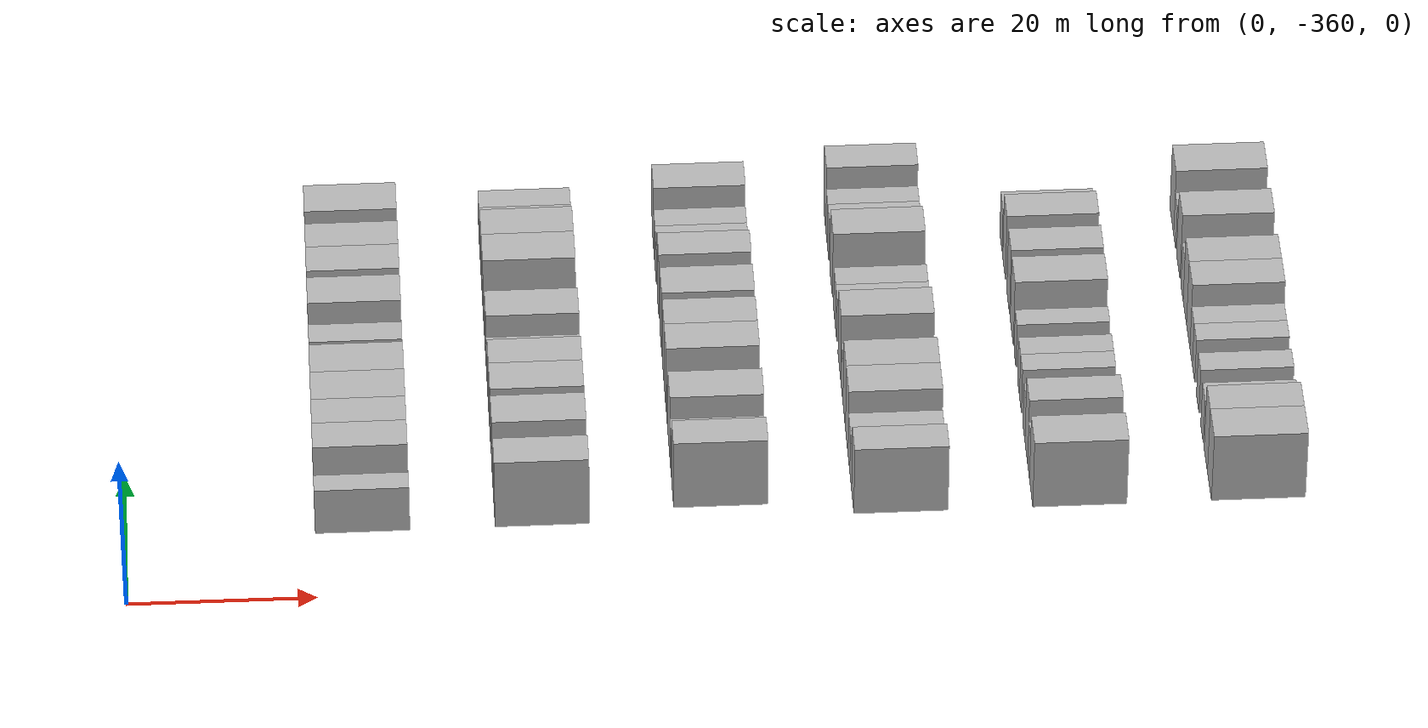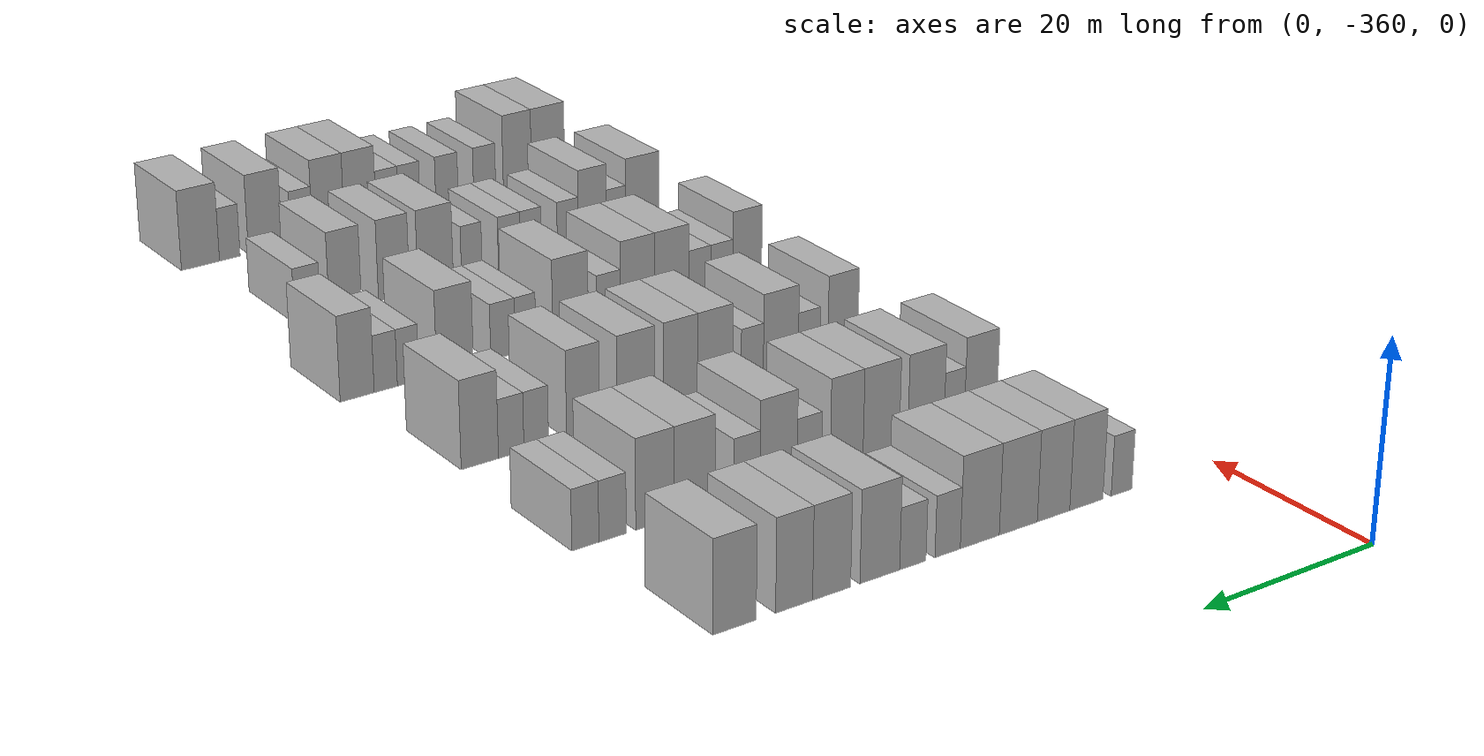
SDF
<sdf version="1.6">
 <world name="default">
  <model name="building_1">
   <static>1</static>
   <pose>25.0000 -348.7556 0 0.000000 0.000000 0.000000</pose>
   <link name="link">
    <pose>0 0 3.00 0 0 0</pose>
    <collision name="collision"><geometry><box><size>10.0000 2.4888 6.0000</size></box></geometry></collision>
    <visual name="visual">
     <cast_shadows>0</cast_shadows>
     <geometry><box><size>10.0000 2.4888 6.0000</size></box></geometry>
     <material>
      <script>
       <uri>model://HANNAS_wall/materials/scripts</uri>
       <uri>model://HANNAS_wall/materials/textures</uri>
       <name>vrc/HANNAS_wall</name>
      </script>
     </material>
    </visual>
   </link>
  </model>
  <model name="building_2">
   <static>1</static>
   <pose>25.0000 -344.5438 0 0.000000 0.000000 0.000000</pose>
   <link name="link">
    <pose>0 0 4.50 0 0 0</pose>
    <collision name="collision"><geometry><box><size>10.0000 3.9348 9.0000</size></box></geometry></collision>
    <visual name="visual">
     <cast_shadows>0</cast_shadows>
     <geometry><box><size>10.0000 3.9348 9.0000</size></box></geometry>
     <material>
      <script>
       <uri>model://HANNAS_wall/materials/scripts</uri>
       <uri>model://HANNAS_wall/materials/textures</uri>
       <name>vrc/HANNAS_wall</name>
      </script>
     </material>
    </visual>
   </link>
  </model>
  <model name="building_3">
   <static>1</static>
   <pose>25.0000 -340.6783 0 0.000000 0.000000 0.000000</pose>
   <link name="link">
    <pose>0 0 4.50 0 0 0</pose>
    <collision name="collision"><geometry><box><size>10.0000 3.7962 9.0000</size></box></geometry></collision>
    <visual name="visual">
     <cast_shadows>0</cast_shadows>
     <geometry><box><size>10.0000 3.7962 9.0000</size></box></geometry>
     <material>
      <script>
       <uri>model://HANNAS_wall/materials/scripts</uri>
       <uri>model://HANNAS_wall/materials/textures</uri>
       <name>vrc/HANNAS_wall</name>
      </script>
     </material>
    </visual>
   </link>
  </model>
  <model name="building_4">
   <static>1</static>
   <pose>25.0000 -336.5885 0 0.000000 0.000000 0.000000</pose>
   <link name="link">
    <pose>0 0 4.50 0 0 0</pose>
    <collision name="collision"><geometry><box><size>10.0000 4.3835 9.0000</size></box></geometry></collision>
    <visual name="visual">
     <cast_shadows>0</cast_shadows>
     <geometry><box><size>10.0000 4.3835 9.0000</size></box></geometry>
     <material>
      <script>
       <uri>model://HANNAS_wall/materials/scripts</uri>
       <uri>model://HANNAS_wall/materials/textures</uri>
       <name>vrc/HANNAS_wall</name>
      </script>
     </material>
    </visual>
   </link>
  </model>
  <model name="building_5">
   <static>1</static>
   <pose>25.0000 -332.1882 0 0.000000 0.000000 0.000000</pose>
   <link name="link">
    <pose>0 0 4.50 0 0 0</pose>
    <collision name="collision"><geometry><box><size>10.0000 4.4172 9.0000</size></box></geometry></collision>
    <visual name="visual">
     <cast_shadows>0</cast_shadows>
     <geometry><box><size>10.0000 4.4172 9.0000</size></box></geometry>
     <material>
      <script>
       <uri>model://HANNAS_wall/materials/scripts</uri>
       <uri>model://HANNAS_wall/materials/textures</uri>
       <name>vrc/HANNAS_wall</name>
      </script>
     </material>
    </visual>
   </link>
  </model>
  <model name="building_6">
   <static>1</static>
   <pose>25.0000 -328.5649 0 0.000000 0.000000 0.000000</pose>
   <link name="link">
    <pose>0 0 3.00 0 0 0</pose>
    <collision name="collision"><geometry><box><size>10.0000 2.8294 6.0000</size></box></geometry></collision>
    <visual name="visual">
     <cast_shadows>0</cast_shadows>
     <geometry><box><size>10.0000 2.8294 6.0000</size></box></geometry>
     <material>
      <script>
       <uri>model://HANNAS_wall/materials/scripts</uri>
       <uri>model://HANNAS_wall/materials/textures</uri>
       <name>vrc/HANNAS_wall</name>
      </script>
     </material>
    </visual>
   </link>
  </model>
  <model name="building_7">
   <static>1</static>
   <pose>25.0000 -324.7012 0 0.000000 0.000000 0.000000</pose>
   <link name="link">
    <pose>0 0 3.00 0 0 0</pose>
    <collision name="collision"><geometry><box><size>10.0000 2.8978 6.0000</size></box></geometry></collision>
    <visual name="visual">
     <cast_shadows>0</cast_shadows>
     <geometry><box><size>10.0000 2.8978 6.0000</size></box></geometry>
     <material>
      <script>
       <uri>model://HANNAS_wall/materials/scripts</uri>
       <uri>model://HANNAS_wall/materials/textures</uri>
       <name>vrc/HANNAS_wall</name>
      </script>
     </material>
    </visual>
   </link>
  </model>
  <model name="building_8">
   <static>1</static>
   <pose>25.0000 -321.0993 0 0.000000 0.000000 0.000000</pose>
   <link name="link">
    <pose>0 0 4.50 0 0 0</pose>
    <collision name="collision"><geometry><box><size>10.0000 4.3060 9.0000</size></box></geometry></collision>
    <visual name="visual">
     <cast_shadows>0</cast_shadows>
     <geometry><box><size>10.0000 4.3060 9.0000</size></box></geometry>
     <material>
      <script>
       <uri>model://HANNAS_wall/materials/scripts</uri>
       <uri>model://HANNAS_wall/materials/textures</uri>
       <name>vrc/HANNAS_wall</name>
      </script>
     </material>
    </visual>
   </link>
  </model>
  <model name="building_9">
   <static>1</static>
   <pose>25.0000 -315.9244 0 0.000000 0.000000 0.000000</pose>
   <link name="link">
    <pose>0 0 4.50 0 0 0</pose>
    <collision name="collision"><geometry><box><size>10.0000 4.0438 9.0000</size></box></geometry></collision>
    <visual name="visual">
     <cast_shadows>0</cast_shadows>
     <geometry><box><size>10.0000 4.0438 9.0000</size></box></geometry>
     <material>
      <script>
       <uri>model://HANNAS_wall/materials/scripts</uri>
       <uri>model://HANNAS_wall/materials/textures</uri>
       <name>vrc/HANNAS_wall</name>
      </script>
     </material>
    </visual>
   </link>
  </model>
  <model name="building_10">
   <static>1</static>
   <pose>25.0000 -311.9721 0 0.000000 0.000000 0.000000</pose>
   <link name="link">
    <pose>0 0 4.50 0 0 0</pose>
    <collision name="collision"><geometry><box><size>10.0000 3.8609 9.0000</size></box></geometry></collision>
    <visual name="visual">
     <cast_shadows>0</cast_shadows>
     <geometry><box><size>10.0000 3.8609 9.0000</size></box></geometry>
     <material>
      <script>
       <uri>model://HANNAS_wall/materials/scripts</uri>
       <uri>model://HANNAS_wall/materials/textures</uri>
       <name>vrc/HANNAS_wall</name>
      </script>
     </material>
    </visual>
   </link>
  </model>
  <model name="building_11">
   <static>1</static>
   <pose>25.0000 -305.8310 0 0.000000 0.000000 0.000000</pose>
   <link name="link">
    <pose>0 0 4.50 0 0 0</pose>
    <collision name="collision"><geometry><box><size>10.0000 4.4213 9.0000</size></box></geometry></collision>
    <visual name="visual">
     <cast_shadows>0</cast_shadows>
     <geometry><box><size>10.0000 4.4213 9.0000</size></box></geometry>
     <material>
      <script>
       <uri>model://HANNAS_wall/materials/scripts</uri>
       <uri>model://HANNAS_wall/materials/textures</uri>
       <name>vrc/HANNAS_wall</name>
      </script>
     </material>
    </visual>
   </link>
  </model>
  <model name="building_171">
   <static>1</static>
   <pose>44.0000 -348.0182 0 0.000000 0.000000 0.000000</pose>
   <link name="link">
    <pose>0 0 4.50 0 0 0</pose>
    <collision name="collision"><geometry><box><size>10.0000 3.9637 9.0000</size></box></geometry></collision>
    <visual name="visual">
     <cast_shadows>0</cast_shadows>
     <geometry><box><size>10.0000 3.9637 9.0000</size></box></geometry>
     <material>
      <script>
       <uri>model://HANNAS_wall/materials/scripts</uri>
       <uri>model://HANNAS_wall/materials/textures</uri>
       <name>vrc/HANNAS_wall</name>
      </script>
     </material>
    </visual>
   </link>
  </model>
  <model name="building_172">
   <static>1</static>
   <pose>44.0000 -344.8014 0 0.000000 0.000000 0.000000</pose>
   <link name="link">
    <pose>0 0 3.00 0 0 0</pose>
    <collision name="collision"><geometry><box><size>10.0000 2.4699 6.0000</size></box></geometry></collision>
    <visual name="visual">
     <cast_shadows>0</cast_shadows>
     <geometry><box><size>10.0000 2.4699 6.0000</size></box></geometry>
     <material>
      <script>
       <uri>model://HANNAS_wall/materials/scripts</uri>
       <uri>model://HANNAS_wall/materials/textures</uri>
       <name>vrc/HANNAS_wall</name>
      </script>
     </material>
    </visual>
   </link>
  </model>
  <model name="building_173">
   <static>1</static>
   <pose>44.0000 -341.3970 0 0.000000 0.000000 0.000000</pose>
   <link name="link">
    <pose>0 0 4.50 0 0 0</pose>
    <collision name="collision"><geometry><box><size>10.0000 4.3388 9.0000</size></box></geometry></collision>
    <visual name="visual">
     <cast_shadows>0</cast_shadows>
     <geometry><box><size>10.0000 4.3388 9.0000</size></box></geometry>
     <material>
      <script>
       <uri>model://HANNAS_wall/materials/scripts</uri>
       <uri>model://HANNAS_wall/materials/textures</uri>
       <name>vrc/HANNAS_wall</name>
      </script>
     </material>
    </visual>
   </link>
  </model>
  <model name="building_174">
   <static>1</static>
   <pose>44.0000 -336.1019 0 0.000000 0.000000 0.000000</pose>
   <link name="link">
    <pose>0 0 4.50 0 0 0</pose>
    <collision name="collision"><geometry><box><size>10.0000 4.2515 9.0000</size></box></geometry></collision>
    <visual name="visual">
     <cast_shadows>0</cast_shadows>
     <geometry><box><size>10.0000 4.2515 9.0000</size></box></geometry>
     <material>
      <script>
       <uri>model://HANNAS_wall/materials/scripts</uri>
       <uri>model://HANNAS_wall/materials/textures</uri>
       <name>vrc/HANNAS_wall</name>
      </script>
     </material>
    </visual>
   </link>
  </model>
  <model name="building_175">
   <static>1</static>
   <pose>44.0000 -332.0689 0 0.000000 0.000000 0.000000</pose>
   <link name="link">
    <pose>0 0 4.50 0 0 0</pose>
    <collision name="collision"><geometry><box><size>10.0000 3.8146 9.0000</size></box></geometry></collision>
    <visual name="visual">
     <cast_shadows>0</cast_shadows>
     <geometry><box><size>10.0000 3.8146 9.0000</size></box></geometry>
     <material>
      <script>
       <uri>model://HANNAS_wall/materials/scripts</uri>
       <uri>model://HANNAS_wall/materials/textures</uri>
       <name>vrc/HANNAS_wall</name>
      </script>
     </material>
    </visual>
   </link>
  </model>
  <model name="building_176">
   <static>1</static>
   <pose>44.0000 -327.7706 0 0.000000 0.000000 0.000000</pose>
   <link name="link">
    <pose>0 0 3.00 0 0 0</pose>
    <collision name="collision"><geometry><box><size>10.0000 2.7820 6.0000</size></box></geometry></collision>
    <visual name="visual">
     <cast_shadows>0</cast_shadows>
     <geometry><box><size>10.0000 2.7820 6.0000</size></box></geometry>
     <material>
      <script>
       <uri>model://HANNAS_wall/materials/scripts</uri>
       <uri>model://HANNAS_wall/materials/textures</uri>
       <name>vrc/HANNAS_wall</name>
      </script>
     </material>
    </visual>
   </link>
  </model>
  <model name="building_177">
   <static>1</static>
   <pose>44.0000 -324.2966 0 0.000000 0.000000 0.000000</pose>
   <link name="link">
    <pose>0 0 4.50 0 0 0</pose>
    <collision name="collision"><geometry><box><size>10.0000 4.1660 9.0000</size></box></geometry></collision>
    <visual name="visual">
     <cast_shadows>0</cast_shadows>
     <geometry><box><size>10.0000 4.1660 9.0000</size></box></geometry>
     <material>
      <script>
       <uri>model://HANNAS_wall/materials/scripts</uri>
       <uri>model://HANNAS_wall/materials/textures</uri>
       <name>vrc/HANNAS_wall</name>
      </script>
     </material>
    </visual>
   </link>
  </model>
  <model name="building_178">
   <static>1</static>
   <pose>44.0000 -320.7392 0 0.000000 0.000000 0.000000</pose>
   <link name="link">
    <pose>0 0 3.00 0 0 0</pose>
    <collision name="collision"><geometry><box><size>10.0000 2.9488 6.0000</size></box></geometry></collision>
    <visual name="visual">
     <cast_shadows>0</cast_shadows>
     <geometry><box><size>10.0000 2.9488 6.0000</size></box></geometry>
     <material>
      <script>
       <uri>model://HANNAS_wall/materials/scripts</uri>
       <uri>model://HANNAS_wall/materials/textures</uri>
       <name>vrc/HANNAS_wall</name>
      </script>
     </material>
    </visual>
   </link>
  </model>
  <model name="building_179">
   <static>1</static>
   <pose>44.0000 -315.0459 0 0.000000 0.000000 0.000000</pose>
   <link name="link">
    <pose>0 0 4.50 0 0 0</pose>
    <collision name="collision"><geometry><box><size>10.0000 4.4378 9.0000</size></box></geometry></collision>
    <visual name="visual">
     <cast_shadows>0</cast_shadows>
     <geometry><box><size>10.0000 4.4378 9.0000</size></box></geometry>
     <material>
      <script>
       <uri>model://HANNAS_wall/materials/scripts</uri>
       <uri>model://HANNAS_wall/materials/textures</uri>
       <name>vrc/HANNAS_wall</name>
      </script>
     </material>
    </visual>
   </link>
  </model>
  <model name="building_180">
   <static>1</static>
   <pose>44.0000 -310.7592 0 0.000000 0.000000 0.000000</pose>
   <link name="link">
    <pose>0 0 4.50 0 0 0</pose>
    <collision name="collision"><geometry><box><size>10.0000 4.1355 9.0000</size></box></geometry></collision>
    <visual name="visual">
     <cast_shadows>0</cast_shadows>
     <geometry><box><size>10.0000 4.1355 9.0000</size></box></geometry>
     <material>
      <script>
       <uri>model://HANNAS_wall/materials/scripts</uri>
       <uri>model://HANNAS_wall/materials/textures</uri>
       <name>vrc/HANNAS_wall</name>
      </script>
     </material>
    </visual>
   </link>
  </model>
  <model name="building_181">
   <static>1</static>
   <pose>44.0000 -306.2509 0 0.000000 0.000000 0.000000</pose>
   <link name="link">
    <pose>0 0 3.00 0 0 0</pose>
    <collision name="collision"><geometry><box><size>10.0000 2.8810 6.0000</size></box></geometry></collision>
    <visual name="visual">
     <cast_shadows>0</cast_shadows>
     <geometry><box><size>10.0000 2.8810 6.0000</size></box></geometry>
     <material>
      <script>
       <uri>model://HANNAS_wall/materials/scripts</uri>
       <uri>model://HANNAS_wall/materials/textures</uri>
       <name>vrc/HANNAS_wall</name>
      </script>
     </material>
    </visual>
   </link>
  </model>
  <model name="building_182">
   <static>1</static>
   <pose>44.0000 -303.3991 0 0.000000 0.000000 0.000000</pose>
   <link name="link">
    <pose>0 0 3.00 0 0 0</pose>
    <collision name="collision"><geometry><box><size>10.0000 2.8228 6.0000</size></box></geometry></collision>
    <visual name="visual">
     <cast_shadows>0</cast_shadows>
     <geometry><box><size>10.0000 2.8228 6.0000</size></box></geometry>
     <material>
      <script>
       <uri>model://HANNAS_wall/materials/scripts</uri>
       <uri>model://HANNAS_wall/materials/textures</uri>
       <name>vrc/HANNAS_wall</name>
      </script>
     </material>
    </visual>
   </link>
  </model>
  <model name="building_343">
   <static>1</static>
   <pose>63.0000 -346.1325 0 0.000000 0.000000 0.000000</pose>
   <link name="link">
    <pose>0 0 4.50 0 0 0</pose>
    <collision name="collision"><geometry><box><size>10.0000 3.7350 9.0000</size></box></geometry></collision>
    <visual name="visual">
     <cast_shadows>0</cast_shadows>
     <geometry><box><size>10.0000 3.7350 9.0000</size></box></geometry>
     <material>
      <script>
       <uri>model://HANNAS_wall/materials/scripts</uri>
       <uri>model://HANNAS_wall/materials/textures</uri>
       <name>vrc/HANNAS_wall</name>
      </script>
     </material>
    </visual>
   </link>
  </model>
  <model name="building_344">
   <static>1</static>
   <pose>63.0000 -341.9500 0 0.000000 0.000000 0.000000</pose>
   <link name="link">
    <pose>0 0 3.00 0 0 0</pose>
    <collision name="collision"><geometry><box><size>10.0000 2.6300 6.0000</size></box></geometry></collision>
    <visual name="visual">
     <cast_shadows>0</cast_shadows>
     <geometry><box><size>10.0000 2.6300 6.0000</size></box></geometry>
     <material>
      <script>
       <uri>model://HANNAS_wall/materials/scripts</uri>
       <uri>model://HANNAS_wall/materials/textures</uri>
       <name>vrc/HANNAS_wall</name>
      </script>
     </material>
    </visual>
   </link>
  </model>
  <model name="building_345">
   <static>1</static>
   <pose>63.0000 -338.5209 0 0.000000 0.000000 0.000000</pose>
   <link name="link">
    <pose>0 0 4.50 0 0 0</pose>
    <collision name="collision"><geometry><box><size>10.0000 4.2281 9.0000</size></box></geometry></collision>
    <visual name="visual">
     <cast_shadows>0</cast_shadows>
     <geometry><box><size>10.0000 4.2281 9.0000</size></box></geometry>
     <material>
      <script>
       <uri>model://HANNAS_wall/materials/scripts</uri>
       <uri>model://HANNAS_wall/materials/textures</uri>
       <name>vrc/HANNAS_wall</name>
      </script>
     </material>
    </visual>
   </link>
  </model>
  <model name="building_346">
   <static>1</static>
   <pose>63.0000 -335.0819 0 0.000000 0.000000 0.000000</pose>
   <link name="link">
    <pose>0 0 3.00 0 0 0</pose>
    <collision name="collision"><geometry><box><size>10.0000 2.6500 6.0000</size></box></geometry></collision>
    <visual name="visual">
     <cast_shadows>0</cast_shadows>
     <geometry><box><size>10.0000 2.6500 6.0000</size></box></geometry>
     <material>
      <script>
       <uri>model://HANNAS_wall/materials/scripts</uri>
       <uri>model://HANNAS_wall/materials/textures</uri>
       <name>vrc/HANNAS_wall</name>
      </script>
     </material>
    </visual>
   </link>
  </model>
  <model name="building_347">
   <static>1</static>
   <pose>63.0000 -330.7114 0 0.000000 0.000000 0.000000</pose>
   <link name="link">
    <pose>0 0 4.50 0 0 0</pose>
    <collision name="collision"><geometry><box><size>10.0000 4.0910 9.0000</size></box></geometry></collision>
    <visual name="visual">
     <cast_shadows>0</cast_shadows>
     <geometry><box><size>10.0000 4.0910 9.0000</size></box></geometry>
     <material>
      <script>
       <uri>model://HANNAS_wall/materials/scripts</uri>
       <uri>model://HANNAS_wall/materials/textures</uri>
       <name>vrc/HANNAS_wall</name>
      </script>
     </material>
    </visual>
   </link>
  </model>
  <model name="building_348">
   <static>1</static>
   <pose>63.0000 -326.6590 0 0.000000 0.000000 0.000000</pose>
   <link name="link">
    <pose>0 0 4.50 0 0 0</pose>
    <collision name="collision"><geometry><box><size>10.0000 4.0137 9.0000</size></box></geometry></collision>
    <visual name="visual">
     <cast_shadows>0</cast_shadows>
     <geometry><box><size>10.0000 4.0137 9.0000</size></box></geometry>
     <material>
      <script>
       <uri>model://HANNAS_wall/materials/scripts</uri>
       <uri>model://HANNAS_wall/materials/textures</uri>
       <name>vrc/HANNAS_wall</name>
      </script>
     </material>
    </visual>
   </link>
  </model>
  <model name="building_349">
   <static>1</static>
   <pose>63.0000 -321.5027 0 0.000000 0.000000 0.000000</pose>
   <link name="link">
    <pose>0 0 4.50 0 0 0</pose>
    <collision name="collision"><geometry><box><size>10.0000 4.2990 9.0000</size></box></geometry></collision>
    <visual name="visual">
     <cast_shadows>0</cast_shadows>
     <geometry><box><size>10.0000 4.2990 9.0000</size></box></geometry>
     <material>
      <script>
       <uri>model://HANNAS_wall/materials/scripts</uri>
       <uri>model://HANNAS_wall/materials/textures</uri>
       <name>vrc/HANNAS_wall</name>
      </script>
     </material>
    </visual>
   </link>
  </model>
  <model name="building_350">
   <static>1</static>
   <pose>63.0000 -315.5045 0 0.000000 0.000000 0.000000</pose>
   <link name="link">
    <pose>0 0 4.50 0 0 0</pose>
    <collision name="collision"><geometry><box><size>10.0000 3.6975 9.0000</size></box></geometry></collision>
    <visual name="visual">
     <cast_shadows>0</cast_shadows>
     <geometry><box><size>10.0000 3.6975 9.0000</size></box></geometry>
     <material>
      <script>
       <uri>model://HANNAS_wall/materials/scripts</uri>
       <uri>model://HANNAS_wall/materials/textures</uri>
       <name>vrc/HANNAS_wall</name>
      </script>
     </material>
    </visual>
   </link>
  </model>
  <model name="building_351">
   <static>1</static>
   <pose>63.0000 -310.3029 0 0.000000 0.000000 0.000000</pose>
   <link name="link">
    <pose>0 0 3.00 0 0 0</pose>
    <collision name="collision"><geometry><box><size>10.0000 2.7055 6.0000</size></box></geometry></collision>
    <visual name="visual">
     <cast_shadows>0</cast_shadows>
     <geometry><box><size>10.0000 2.7055 6.0000</size></box></geometry>
     <material>
      <script>
       <uri>model://HANNAS_wall/materials/scripts</uri>
       <uri>model://HANNAS_wall/materials/textures</uri>
       <name>vrc/HANNAS_wall</name>
      </script>
     </material>
    </visual>
   </link>
  </model>
  <model name="building_352">
   <static>1</static>
   <pose>63.0000 -307.5657 0 0.000000 0.000000 0.000000</pose>
   <link name="link">
    <pose>0 0 3.00 0 0 0</pose>
    <collision name="collision"><geometry><box><size>10.0000 2.7688 6.0000</size></box></geometry></collision>
    <visual name="visual">
     <cast_shadows>0</cast_shadows>
     <geometry><box><size>10.0000 2.7688 6.0000</size></box></geometry>
     <material>
      <script>
       <uri>model://HANNAS_wall/materials/scripts</uri>
       <uri>model://HANNAS_wall/materials/textures</uri>
       <name>vrc/HANNAS_wall</name>
      </script>
     </material>
    </visual>
   </link>
  </model>
  <model name="building_353">
   <static>1</static>
   <pose>63.0000 -304.1763 0 0.000000 0.000000 0.000000</pose>
   <link name="link">
    <pose>0 0 4.50 0 0 0</pose>
    <collision name="collision"><geometry><box><size>10.0000 4.0099 9.0000</size></box></geometry></collision>
    <visual name="visual">
     <cast_shadows>0</cast_shadows>
     <geometry><box><size>10.0000 4.0099 9.0000</size></box></geometry>
     <material>
      <script>
       <uri>model://HANNAS_wall/materials/scripts</uri>
       <uri>model://HANNAS_wall/materials/textures</uri>
       <name>vrc/HANNAS_wall</name>
      </script>
     </material>
    </visual>
   </link>
  </model>
  <model name="building_522">
   <static>1</static>
   <pose>82.0000 -348.1742 0 0.000000 0.000000 0.000000</pose>
   <link name="link">
    <pose>0 0 4.50 0 0 0</pose>
    <collision name="collision"><geometry><box><size>10.0000 3.6516 9.0000</size></box></geometry></collision>
    <visual name="visual">
     <cast_shadows>0</cast_shadows>
     <geometry><box><size>10.0000 3.6516 9.0000</size></box></geometry>
     <material>
      <script>
       <uri>model://HANNAS_wall/materials/scripts</uri>
       <uri>model://HANNAS_wall/materials/textures</uri>
       <name>vrc/HANNAS_wall</name>
      </script>
     </material>
    </visual>
   </link>
  </model>
  <model name="building_523">
   <static>1</static>
   <pose>82.0000 -344.9289 0 0.000000 0.000000 0.000000</pose>
   <link name="link">
    <pose>0 0 3.00 0 0 0</pose>
    <collision name="collision"><geometry><box><size>10.0000 2.8389 6.0000</size></box></geometry></collision>
    <visual name="visual">
     <cast_shadows>0</cast_shadows>
     <geometry><box><size>10.0000 2.8389 6.0000</size></box></geometry>
     <material>
      <script>
       <uri>model://HANNAS_wall/materials/scripts</uri>
       <uri>model://HANNAS_wall/materials/textures</uri>
       <name>vrc/HANNAS_wall</name>
      </script>
     </material>
    </visual>
   </link>
  </model>
  <model name="building_524">
   <static>1</static>
   <pose>82.0000 -342.1339 0 0.000000 0.000000 0.000000</pose>
   <link name="link">
    <pose>0 0 3.00 0 0 0</pose>
    <collision name="collision"><geometry><box><size>10.0000 2.7511 6.0000</size></box></geometry></collision>
    <visual name="visual">
     <cast_shadows>0</cast_shadows>
     <geometry><box><size>10.0000 2.7511 6.0000</size></box></geometry>
     <material>
      <script>
       <uri>model://HANNAS_wall/materials/scripts</uri>
       <uri>model://HANNAS_wall/materials/textures</uri>
       <name>vrc/HANNAS_wall</name>
      </script>
     </material>
    </visual>
   </link>
  </model>
  <model name="building_525">
   <static>1</static>
   <pose>82.0000 -338.6343 0 0.000000 0.000000 0.000000</pose>
   <link name="link">
    <pose>0 0 4.50 0 0 0</pose>
    <collision name="collision"><geometry><box><size>10.0000 4.2481 9.0000</size></box></geometry></collision>
    <visual name="visual">
     <cast_shadows>0</cast_shadows>
     <geometry><box><size>10.0000 4.2481 9.0000</size></box></geometry>
     <material>
      <script>
       <uri>model://HANNAS_wall/materials/scripts</uri>
       <uri>model://HANNAS_wall/materials/textures</uri>
       <name>vrc/HANNAS_wall</name>
      </script>
     </material>
    </visual>
   </link>
  </model>
  <model name="building_526">
   <static>1</static>
   <pose>82.0000 -334.4495 0 0.000000 0.000000 0.000000</pose>
   <link name="link">
    <pose>0 0 4.50 0 0 0</pose>
    <collision name="collision"><geometry><box><size>10.0000 4.1214 9.0000</size></box></geometry></collision>
    <visual name="visual">
     <cast_shadows>0</cast_shadows>
     <geometry><box><size>10.0000 4.1214 9.0000</size></box></geometry>
     <material>
      <script>
       <uri>model://HANNAS_wall/materials/scripts</uri>
       <uri>model://HANNAS_wall/materials/textures</uri>
       <name>vrc/HANNAS_wall</name>
      </script>
     </material>
    </visual>
   </link>
  </model>
  <model name="building_527">
   <static>1</static>
   <pose>82.0000 -330.9265 0 0.000000 0.000000 0.000000</pose>
   <link name="link">
    <pose>0 0 3.00 0 0 0</pose>
    <collision name="collision"><geometry><box><size>10.0000 2.9245 6.0000</size></box></geometry></collision>
    <visual name="visual">
     <cast_shadows>0</cast_shadows>
     <geometry><box><size>10.0000 2.9245 6.0000</size></box></geometry>
     <material>
      <script>
       <uri>model://HANNAS_wall/materials/scripts</uri>
       <uri>model://HANNAS_wall/materials/textures</uri>
       <name>vrc/HANNAS_wall</name>
      </script>
     </material>
    </visual>
   </link>
  </model>
  <model name="building_528">
   <static>1</static>
   <pose>82.0000 -326.3429 0 0.000000 0.000000 0.000000</pose>
   <link name="link">
    <pose>0 0 4.50 0 0 0</pose>
    <collision name="collision"><geometry><box><size>10.0000 4.2428 9.0000</size></box></geometry></collision>
    <visual name="visual">
     <cast_shadows>0</cast_shadows>
     <geometry><box><size>10.0000 4.2428 9.0000</size></box></geometry>
     <material>
      <script>
       <uri>model://HANNAS_wall/materials/scripts</uri>
       <uri>model://HANNAS_wall/materials/textures</uri>
       <name>vrc/HANNAS_wall</name>
      </script>
     </material>
    </visual>
   </link>
  </model>
  <model name="building_529">
   <static>1</static>
   <pose>82.0000 -321.0095 0 0.000000 0.000000 0.000000</pose>
   <link name="link">
    <pose>0 0 3.00 0 0 0</pose>
    <collision name="collision"><geometry><box><size>10.0000 2.4239 6.0000</size></box></geometry></collision>
    <visual name="visual">
     <cast_shadows>0</cast_shadows>
     <geometry><box><size>10.0000 2.4239 6.0000</size></box></geometry>
     <material>
      <script>
       <uri>model://HANNAS_wall/materials/scripts</uri>
       <uri>model://HANNAS_wall/materials/textures</uri>
       <name>vrc/HANNAS_wall</name>
      </script>
     </material>
    </visual>
   </link>
  </model>
  <model name="building_530">
   <static>1</static>
   <pose>82.0000 -318.3748 0 0.000000 0.000000 0.000000</pose>
   <link name="link">
    <pose>0 0 3.00 0 0 0</pose>
    <collision name="collision"><geometry><box><size>10.0000 2.8454 6.0000</size></box></geometry></collision>
    <visual name="visual">
     <cast_shadows>0</cast_shadows>
     <geometry><box><size>10.0000 2.8454 6.0000</size></box></geometry>
     <material>
      <script>
       <uri>model://HANNAS_wall/materials/scripts</uri>
       <uri>model://HANNAS_wall/materials/textures</uri>
       <name>vrc/HANNAS_wall</name>
      </script>
     </material>
    </visual>
   </link>
  </model>
  <model name="building_531">
   <static>1</static>
   <pose>82.0000 -312.8634 0 0.000000 0.000000 0.000000</pose>
   <link name="link">
    <pose>0 0 4.50 0 0 0</pose>
    <collision name="collision"><geometry><box><size>10.0000 4.1774 9.0000</size></box></geometry></collision>
    <visual name="visual">
     <cast_shadows>0</cast_shadows>
     <geometry><box><size>10.0000 4.1774 9.0000</size></box></geometry>
     <material>
      <script>
       <uri>model://HANNAS_wall/materials/scripts</uri>
       <uri>model://HANNAS_wall/materials/textures</uri>
       <name>vrc/HANNAS_wall</name>
      </script>
     </material>
    </visual>
   </link>
  </model>
  <model name="building_532">
   <static>1</static>
   <pose>82.0000 -307.5645 0 0.000000 0.000000 0.000000</pose>
   <link name="link">
    <pose>0 0 3.00 0 0 0</pose>
    <collision name="collision"><geometry><box><size>10.0000 2.4205 6.0000</size></box></geometry></collision>
    <visual name="visual">
     <cast_shadows>0</cast_shadows>
     <geometry><box><size>10.0000 2.4205 6.0000</size></box></geometry>
     <material>
      <script>
       <uri>model://HANNAS_wall/materials/scripts</uri>
       <uri>model://HANNAS_wall/materials/textures</uri>
       <name>vrc/HANNAS_wall</name>
      </script>
     </material>
    </visual>
   </link>
  </model>
  <model name="building_533">
   <static>1</static>
   <pose>82.0000 -305.0686 0 0.000000 0.000000 0.000000</pose>
   <link name="link">
    <pose>0 0 3.00 0 0 0</pose>
    <collision name="collision"><geometry><box><size>10.0000 2.5714 6.0000</size></box></geometry></collision>
    <visual name="visual">
     <cast_shadows>0</cast_shadows>
     <geometry><box><size>10.0000 2.5714 6.0000</size></box></geometry>
     <material>
      <script>
       <uri>model://HANNAS_wall/materials/scripts</uri>
       <uri>model://HANNAS_wall/materials/textures</uri>
       <name>vrc/HANNAS_wall</name>
      </script>
     </material>
    </visual>
   </link>
  </model>
  <model name="building_534">
   <static>1</static>
   <pose>82.0000 -301.9152 0 0.000000 0.000000 0.000000</pose>
   <link name="link">
    <pose>0 0 4.50 0 0 0</pose>
    <collision name="collision"><geometry><box><size>10.0000 3.7354 9.0000</size></box></geometry></collision>
    <visual name="visual">
     <cast_shadows>0</cast_shadows>
     <geometry><box><size>10.0000 3.7354 9.0000</size></box></geometry>
     <material>
      <script>
       <uri>model://HANNAS_wall/materials/scripts</uri>
       <uri>model://HANNAS_wall/materials/textures</uri>
       <name>vrc/HANNAS_wall</name>
      </script>
     </material>
    </visual>
   </link>
  </model>
  <model name="building_696">
   <static>1</static>
   <pose>101.0000 -347.8178 0 0.000000 0.000000 0.000000</pose>
   <link name="link">
    <pose>0 0 4.50 0 0 0</pose>
    <collision name="collision"><geometry><box><size>10.0000 4.3643 9.0000</size></box></geometry></collision>
    <visual name="visual">
     <cast_shadows>0</cast_shadows>
     <geometry><box><size>10.0000 4.3643 9.0000</size></box></geometry>
     <material>
      <script>
       <uri>model://HANNAS_wall/materials/scripts</uri>
       <uri>model://HANNAS_wall/materials/textures</uri>
       <name>vrc/HANNAS_wall</name>
      </script>
     </material>
    </visual>
   </link>
  </model>
  <model name="building_697">
   <static>1</static>
   <pose>101.0000 -344.4191 0 0.000000 0.000000 0.000000</pose>
   <link name="link">
    <pose>0 0 3.00 0 0 0</pose>
    <collision name="collision"><geometry><box><size>10.0000 2.4333 6.0000</size></box></geometry></collision>
    <visual name="visual">
     <cast_shadows>0</cast_shadows>
     <geometry><box><size>10.0000 2.4333 6.0000</size></box></geometry>
     <material>
      <script>
       <uri>model://HANNAS_wall/materials/scripts</uri>
       <uri>model://HANNAS_wall/materials/textures</uri>
       <name>vrc/HANNAS_wall</name>
      </script>
     </material>
    </visual>
   </link>
  </model>
  <model name="building_698">
   <static>1</static>
   <pose>101.0000 -341.3894 0 0.000000 0.000000 0.000000</pose>
   <link name="link">
    <pose>0 0 4.50 0 0 0</pose>
    <collision name="collision"><geometry><box><size>10.0000 3.6260 9.0000</size></box></geometry></collision>
    <visual name="visual">
     <cast_shadows>0</cast_shadows>
     <geometry><box><size>10.0000 3.6260 9.0000</size></box></geometry>
     <material>
      <script>
       <uri>model://HANNAS_wall/materials/scripts</uri>
       <uri>model://HANNAS_wall/materials/textures</uri>
       <name>vrc/HANNAS_wall</name>
      </script>
     </material>
    </visual>
   </link>
  </model>
  <model name="building_699">
   <static>1</static>
   <pose>101.0000 -338.2328 0 0.000000 0.000000 0.000000</pose>
   <link name="link">
    <pose>0 0 3.00 0 0 0</pose>
    <collision name="collision"><geometry><box><size>10.0000 2.6873 6.0000</size></box></geometry></collision>
    <visual name="visual">
     <cast_shadows>0</cast_shadows>
     <geometry><box><size>10.0000 2.6873 6.0000</size></box></geometry>
     <material>
      <script>
       <uri>model://HANNAS_wall/materials/scripts</uri>
       <uri>model://HANNAS_wall/materials/textures</uri>
       <name>vrc/HANNAS_wall</name>
      </script>
     </material>
    </visual>
   </link>
  </model>
  <model name="building_700">
   <static>1</static>
   <pose>101.0000 -333.5779 0 0.000000 0.000000 0.000000</pose>
   <link name="link">
    <pose>0 0 3.00 0 0 0</pose>
    <collision name="collision"><geometry><box><size>10.0000 2.6225 6.0000</size></box></geometry></collision>
    <visual name="visual">
     <cast_shadows>0</cast_shadows>
     <geometry><box><size>10.0000 2.6225 6.0000</size></box></geometry>
     <material>
      <script>
       <uri>model://HANNAS_wall/materials/scripts</uri>
       <uri>model://HANNAS_wall/materials/textures</uri>
       <name>vrc/HANNAS_wall</name>
      </script>
     </material>
    </visual>
   </link>
  </model>
  <model name="building_701">
   <static>1</static>
   <pose>101.0000 -330.8861 0 0.000000 0.000000 0.000000</pose>
   <link name="link">
    <pose>0 0 3.00 0 0 0</pose>
    <collision name="collision"><geometry><box><size>10.0000 2.7611 6.0000</size></box></geometry></collision>
    <visual name="visual">
     <cast_shadows>0</cast_shadows>
     <geometry><box><size>10.0000 2.7611 6.0000</size></box></geometry>
     <material>
      <script>
       <uri>model://HANNAS_wall/materials/scripts</uri>
       <uri>model://HANNAS_wall/materials/textures</uri>
       <name>vrc/HANNAS_wall</name>
      </script>
     </material>
    </visual>
   </link>
  </model>
  <model name="building_702">
   <static>1</static>
   <pose>101.0000 -326.2415 0 0.000000 0.000000 0.000000</pose>
   <link name="link">
    <pose>0 0 3.00 0 0 0</pose>
    <collision name="collision"><geometry><box><size>10.0000 2.5280 6.0000</size></box></geometry></collision>
    <visual name="visual">
     <cast_shadows>0</cast_shadows>
     <geometry><box><size>10.0000 2.5280 6.0000</size></box></geometry>
     <material>
      <script>
       <uri>model://HANNAS_wall/materials/scripts</uri>
       <uri>model://HANNAS_wall/materials/textures</uri>
       <name>vrc/HANNAS_wall</name>
      </script>
     </material>
    </visual>
   </link>
  </model>
  <model name="building_703">
   <static>1</static>
   <pose>101.0000 -321.8466 0 0.000000 0.000000 0.000000</pose>
   <link name="link">
    <pose>0 0 4.50 0 0 0</pose>
    <collision name="collision"><geometry><box><size>10.0000 4.2619 9.0000</size></box></geometry></collision>
    <visual name="visual">
     <cast_shadows>0</cast_shadows>
     <geometry><box><size>10.0000 4.2619 9.0000</size></box></geometry>
     <material>
      <script>
       <uri>model://HANNAS_wall/materials/scripts</uri>
       <uri>model://HANNAS_wall/materials/textures</uri>
       <name>vrc/HANNAS_wall</name>
      </script>
     </material>
    </visual>
   </link>
  </model>
  <model name="building_704">
   <static>1</static>
   <pose>101.0000 -316.8671 0 0.000000 0.000000 0.000000</pose>
   <link name="link">
    <pose>0 0 4.50 0 0 0</pose>
    <collision name="collision"><geometry><box><size>10.0000 3.6971 9.0000</size></box></geometry></collision>
    <visual name="visual">
     <cast_shadows>0</cast_shadows>
     <geometry><box><size>10.0000 3.6971 9.0000</size></box></geometry>
     <material>
      <script>
       <uri>model://HANNAS_wall/materials/scripts</uri>
       <uri>model://HANNAS_wall/materials/textures</uri>
       <name>vrc/HANNAS_wall</name>
      </script>
     </material>
    </visual>
   </link>
  </model>
  <model name="building_705">
   <static>1</static>
   <pose>101.0000 -311.1480 0 0.000000 0.000000 0.000000</pose>
   <link name="link">
    <pose>0 0 4.50 0 0 0</pose>
    <collision name="collision"><geometry><box><size>10.0000 3.7410 9.0000</size></box></geometry></collision>
    <visual name="visual">
     <cast_shadows>0</cast_shadows>
     <geometry><box><size>10.0000 3.7410 9.0000</size></box></geometry>
     <material>
      <script>
       <uri>model://HANNAS_wall/materials/scripts</uri>
       <uri>model://HANNAS_wall/materials/textures</uri>
       <name>vrc/HANNAS_wall</name>
      </script>
     </material>
    </visual>
   </link>
  </model>
  <model name="building_706">
   <static>1</static>
   <pose>101.0000 -306.7839 0 0.000000 0.000000 0.000000</pose>
   <link name="link">
    <pose>0 0 3.00 0 0 0</pose>
    <collision name="collision"><geometry><box><size>10.0000 2.9873 6.0000</size></box></geometry></collision>
    <visual name="visual">
     <cast_shadows>0</cast_shadows>
     <geometry><box><size>10.0000 2.9873 6.0000</size></box></geometry>
     <material>
      <script>
       <uri>model://HANNAS_wall/materials/scripts</uri>
       <uri>model://HANNAS_wall/materials/textures</uri>
       <name>vrc/HANNAS_wall</name>
      </script>
     </material>
    </visual>
   </link>
  </model>
  <model name="building_870">
   <static>1</static>
   <pose>120.0000 -347.7793 0 0.000000 0.000000 0.000000</pose>
   <link name="link">
    <pose>0 0 4.50 0 0 0</pose>
    <collision name="collision"><geometry><box><size>10.0000 4.4414 9.0000</size></box></geometry></collision>
    <visual name="visual">
     <cast_shadows>0</cast_shadows>
     <geometry><box><size>10.0000 4.4414 9.0000</size></box></geometry>
     <material>
      <script>
       <uri>model://HANNAS_wall/materials/scripts</uri>
       <uri>model://HANNAS_wall/materials/textures</uri>
       <name>vrc/HANNAS_wall</name>
      </script>
     </material>
    </visual>
   </link>
  </model>
  <model name="building_871">
   <static>1</static>
   <pose>120.0000 -343.6853 0 0.000000 0.000000 0.000000</pose>
   <link name="link">
    <pose>0 0 4.50 0 0 0</pose>
    <collision name="collision"><geometry><box><size>10.0000 3.7467 9.0000</size></box></geometry></collision>
    <visual name="visual">
     <cast_shadows>0</cast_shadows>
     <geometry><box><size>10.0000 3.7467 9.0000</size></box></geometry>
     <material>
      <script>
       <uri>model://HANNAS_wall/materials/scripts</uri>
       <uri>model://HANNAS_wall/materials/textures</uri>
       <name>vrc/HANNAS_wall</name>
      </script>
     </material>
    </visual>
   </link>
  </model>
  <model name="building_872">
   <static>1</static>
   <pose>120.0000 -339.3718 0 0.000000 0.000000 0.000000</pose>
   <link name="link">
    <pose>0 0 3.00 0 0 0</pose>
    <collision name="collision"><geometry><box><size>10.0000 2.8802 6.0000</size></box></geometry></collision>
    <visual name="visual">
     <cast_shadows>0</cast_shadows>
     <geometry><box><size>10.0000 2.8802 6.0000</size></box></geometry>
     <material>
      <script>
       <uri>model://HANNAS_wall/materials/scripts</uri>
       <uri>model://HANNAS_wall/materials/textures</uri>
       <name>vrc/HANNAS_wall</name>
      </script>
     </material>
    </visual>
   </link>
  </model>
  <model name="building_873">
   <static>1</static>
   <pose>120.0000 -334.4897 0 0.000000 0.000000 0.000000</pose>
   <link name="link">
    <pose>0 0 3.00 0 0 0</pose>
    <collision name="collision"><geometry><box><size>10.0000 2.8840 6.0000</size></box></geometry></collision>
    <visual name="visual">
     <cast_shadows>0</cast_shadows>
     <geometry><box><size>10.0000 2.8840 6.0000</size></box></geometry>
     <material>
      <script>
       <uri>model://HANNAS_wall/materials/scripts</uri>
       <uri>model://HANNAS_wall/materials/textures</uri>
       <name>vrc/HANNAS_wall</name>
      </script>
     </material>
    </visual>
   </link>
  </model>
  <model name="building_874">
   <static>1</static>
   <pose>120.0000 -329.6797 0 0.000000 0.000000 0.000000</pose>
   <link name="link">
    <pose>0 0 3.00 0 0 0</pose>
    <collision name="collision"><geometry><box><size>10.0000 2.7360 6.0000</size></box></geometry></collision>
    <visual name="visual">
     <cast_shadows>0</cast_shadows>
     <geometry><box><size>10.0000 2.7360 6.0000</size></box></geometry>
     <material>
      <script>
       <uri>model://HANNAS_wall/materials/scripts</uri>
       <uri>model://HANNAS_wall/materials/textures</uri>
       <name>vrc/HANNAS_wall</name>
      </script>
     </material>
    </visual>
   </link>
  </model>
  <model name="building_875">
   <static>1</static>
   <pose>120.0000 -326.9076 0 0.000000 0.000000 0.000000</pose>
   <link name="link">
    <pose>0 0 3.00 0 0 0</pose>
    <collision name="collision"><geometry><box><size>10.0000 2.8083 6.0000</size></box></geometry></collision>
    <visual name="visual">
     <cast_shadows>0</cast_shadows>
     <geometry><box><size>10.0000 2.8083 6.0000</size></box></geometry>
     <material>
      <script>
       <uri>model://HANNAS_wall/materials/scripts</uri>
       <uri>model://HANNAS_wall/materials/textures</uri>
       <name>vrc/HANNAS_wall</name>
      </script>
     </material>
    </visual>
   </link>
  </model>
  <model name="building_876">
   <static>1</static>
   <pose>120.0000 -323.5215 0 0.000000 0.000000 0.000000</pose>
   <link name="link">
    <pose>0 0 4.50 0 0 0</pose>
    <collision name="collision"><geometry><box><size>10.0000 3.9638 9.0000</size></box></geometry></collision>
    <visual name="visual">
     <cast_shadows>0</cast_shadows>
     <geometry><box><size>10.0000 3.9638 9.0000</size></box></geometry>
     <material>
      <script>
       <uri>model://HANNAS_wall/materials/scripts</uri>
       <uri>model://HANNAS_wall/materials/textures</uri>
       <name>vrc/HANNAS_wall</name>
      </script>
     </material>
    </visual>
   </link>
  </model>
  <model name="building_877">
   <static>1</static>
   <pose>120.0000 -319.5766 0 0.000000 0.000000 0.000000</pose>
   <link name="link">
    <pose>0 0 4.50 0 0 0</pose>
    <collision name="collision"><geometry><box><size>10.0000 3.9260 9.0000</size></box></geometry></collision>
    <visual name="visual">
     <cast_shadows>0</cast_shadows>
     <geometry><box><size>10.0000 3.9260 9.0000</size></box></geometry>
     <material>
      <script>
       <uri>model://HANNAS_wall/materials/scripts</uri>
       <uri>model://HANNAS_wall/materials/textures</uri>
       <name>vrc/HANNAS_wall</name>
      </script>
     </material>
    </visual>
   </link>
  </model>
  <model name="building_878">
   <static>1</static>
   <pose>120.0000 -316.2718 0 0.000000 0.000000 0.000000</pose>
   <link name="link">
    <pose>0 0 3.00 0 0 0</pose>
    <collision name="collision"><geometry><box><size>10.0000 2.6834 6.0000</size></box></geometry></collision>
    <visual name="visual">
     <cast_shadows>0</cast_shadows>
     <geometry><box><size>10.0000 2.6834 6.0000</size></box></geometry>
     <material>
      <script>
       <uri>model://HANNAS_wall/materials/scripts</uri>
       <uri>model://HANNAS_wall/materials/textures</uri>
       <name>vrc/HANNAS_wall</name>
      </script>
     </material>
    </visual>
   </link>
  </model>
  <model name="building_879">
   <static>1</static>
   <pose>120.0000 -311.9021 0 0.000000 0.000000 0.000000</pose>
   <link name="link">
    <pose>0 0 4.50 0 0 0</pose>
    <collision name="collision"><geometry><box><size>10.0000 4.0561 9.0000</size></box></geometry></collision>
    <visual name="visual">
     <cast_shadows>0</cast_shadows>
     <geometry><box><size>10.0000 4.0561 9.0000</size></box></geometry>
     <material>
      <script>
       <uri>model://HANNAS_wall/materials/scripts</uri>
       <uri>model://HANNAS_wall/materials/textures</uri>
       <name>vrc/HANNAS_wall</name>
      </script>
     </material>
    </visual>
   </link>
  </model>
  <model name="building_880">
   <static>1</static>
   <pose>120.0000 -307.6534 0 0.000000 0.000000 0.000000</pose>
   <link name="link">
    <pose>0 0 3.00 0 0 0</pose>
    <collision name="collision"><geometry><box><size>10.0000 2.4413 6.0000</size></box></geometry></collision>
    <visual name="visual">
     <cast_shadows>0</cast_shadows>
     <geometry><box><size>10.0000 2.4413 6.0000</size></box></geometry>
     <material>
      <script>
       <uri>model://HANNAS_wall/materials/scripts</uri>
       <uri>model://HANNAS_wall/materials/textures</uri>
       <name>vrc/HANNAS_wall</name>
      </script>
     </material>
    </visual>
   </link>
  </model>
  <model name="building_881">
   <static>1</static>
   <pose>120.0000 -304.2011 0 0.000000 0.000000 0.000000</pose>
   <link name="link">
    <pose>0 0 4.50 0 0 0</pose>
    <collision name="collision"><geometry><box><size>10.0000 4.4632 9.0000</size></box></geometry></collision>
    <visual name="visual">
     <cast_shadows>0</cast_shadows>
     <geometry><box><size>10.0000 4.4632 9.0000</size></box></geometry>
     <material>
      <script>
       <uri>model://HANNAS_wall/materials/scripts</uri>
       <uri>model://HANNAS_wall/materials/textures</uri>
       <name>vrc/HANNAS_wall</name>
      </script>
     </material>
    </visual>
   </link>
  </model>
 </world>
</sdf>
